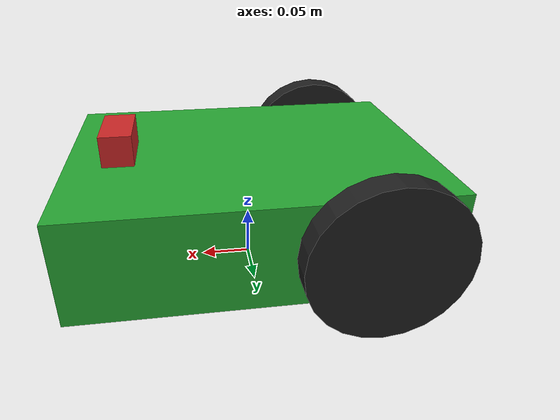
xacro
<?xml version="1.0"?>
<robot name="target" xmlns:xacro="http://www.ros.org/wiki/xacro">
    <xacro:arg name="namespace" default=""/>

    <xacro:property name="wheel_radius" value="0.075"/>
    <xacro:property name="wheel_length" value="0.025"/>
    <xacro:property name="base_width" value="0.25"/>
    <xacro:property name="base_depth" value="0.35"/>
    <xacro:property name="base_height" value="0.1"/>
    <xacro:property name="front_wheel_radius" value="${wheel_radius/2}"/>

    <xacro:include filename="$(find ground_robot_description)/xacro/materials.xacro"/>
    <xacro:include filename="$(find ground_robot_description)/xacro/robot.gazebo">
    </xacro:include>

    <xacro:macro name="box_inertial" params="mass width height depth">
        <inertial>
        <mass value="${mass}"/>
        <inertia ixx="${mass / 12 * (height*height + depth*depth)}"
            iyy="${mass / 12 * (width*width + depth*depth)}"
            izz="${mass / 12 * (width*width + height*height)}"
            ixy="0" iyz="0" ixz="0"/>
        </inertial>
    </xacro:macro>

    <xacro:macro name="cylinder_inertial" params="mass radius length roll pitch yaw">
        <inertial>
        <origin rpy="${roll} ${pitch} ${yaw}"/>
        <mass value="${mass}"/>
        <inertia ixx="${mass*(3*radius*radius+length*length)/12}"
            iyy="${mass*(3*radius*radius+length*length)/12}"
            izz="${mass*radius*radius/2}"
            ixy="0" iyz="0" ixz="0"/>
        </inertial>
    </xacro:macro>

    <xacro:macro name="sphere_inertial" params="mass radius">
        <inertial>
        <mass value="${mass}"/>
        <inertia ixx="${mass*(2*radius*radius)/5}"
            iyy="${mass*(2*radius*radius)/5}"
            izz="${mass*(2*radius*radius)/5}"
            ixy="0" iyz="0" ixz="0"/>
        </inertial>
    </xacro:macro>

    <!-- *****************BASE LINK************************* -->
    <link name="base_footprint"/>

    <link name="base_link">
        <visual>
            <geometry>
                <box size="${base_depth} ${base_width} ${base_height}"/>
            </geometry>
            <material name="green"/>
        </visual>
        <collision>
            <geometry>
                <box size="${base_depth} ${base_width} ${base_height}"/>
            </geometry>
        </collision>
        <xacro:box_inertial mass="0.5" width="${base_depth}" height="${base_width}" depth="${base_height}"/>
    </link>
    <joint name="base_footprint_to_base_link" type="fixed">
        <parent link="base_footprint"/>
        <child link="base_link"/>
        <origin xyz="0 0 ${wheel_radius}"/>
    </joint>

    <!-- *****************REAR WHEELS************************* -->
    <xacro:macro name="wheel" params="prefix reflect">
        <link name="${prefix}_wheel">
            <visual>
                <origin rpy="${pi/2} 0 0"/>
                <geometry>
                <cylinder radius="${wheel_radius}" length="${wheel_length}"/>
                </geometry>
                <material name="black"/>
            </visual>
            <collision>
                <origin rpy="${pi/2} 0 0"/>
                <geometry>
                <cylinder radius="${wheel_radius}" length="${wheel_length}"/>
                </geometry>
            </collision>
            <xacro:cylinder_inertial mass="0.05" radius="${wheel_radius}" length="${wheel_length}" roll="${pi/2}" pitch="0" yaw="0"/>
        </link>
        <joint name="base_to_${prefix}_wheel" type="fixed">
            <parent link="base_link"/>
            <child link="${prefix}_wheel"/>
            <origin xyz="${-1*base_depth/2 + wheel_radius} ${reflect*(base_width/2+wheel_length/2)} 0"/>
        </joint>
    </xacro:macro>
    <xacro:wheel prefix="left" reflect="1" />
    <xacro:wheel prefix="right" reflect="-1" />

    <!-- *****************FRONT WHEEL************************* -->
    <link name="front_wheel">
        <visual>
        <geometry>
            <sphere radius="${front_wheel_radius}"/>
        </geometry>
        <material name="black"/>
        </visual>
        <collision>
            <geometry>
                <sphere radius="${front_wheel_radius}"/>
            </geometry>
        </collision>
        <xacro:sphere_inertial mass="0.1" radius="${front_wheel_radius}"/>
    </link>
    <joint name="base_link_to_front_wheel" type="fixed">
        <parent link="base_link"/>
        <child link="front_wheel"/>
        <origin xyz="${base_depth/2-2*front_wheel_radius} 0 ${-front_wheel_radius}"/>
    </joint>

    <!-- *****************ULTRASOUND************************* -->
    <link name="ultrasound">
        <visual>
            <geometry>
                <box size="0.03 0.06 0.03"/>
            </geometry>
        </visual>
    </link>
    <joint name="base_to_us" type="fixed">
        <parent link="base_link"/>
        <child link="ultrasound"/>
        <origin xyz="${base_depth/2-0.05} 0 ${base_height/2 + 0.015}"/>
    </joint>
</robot>
